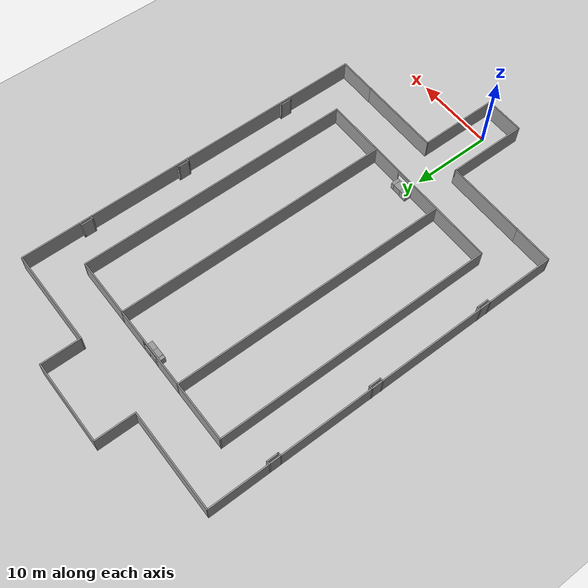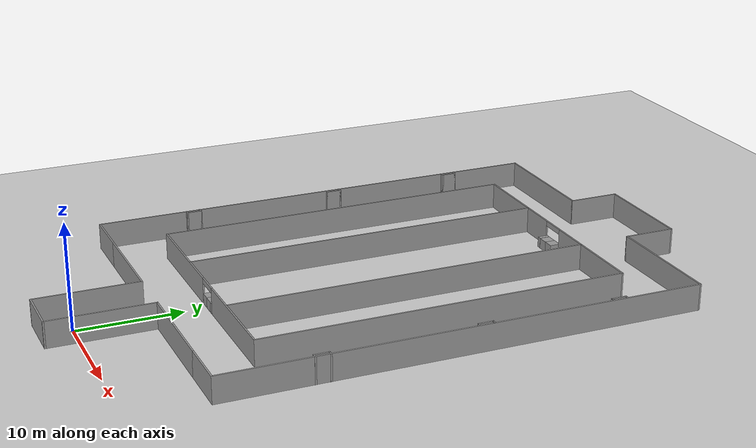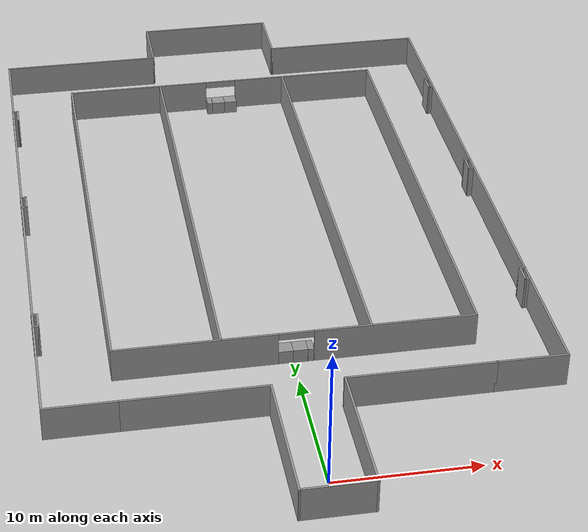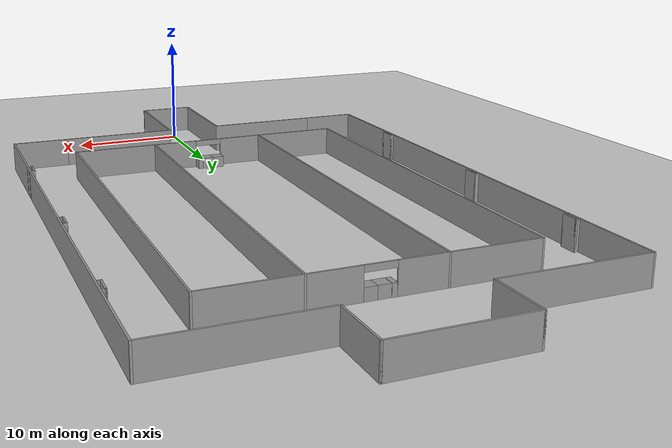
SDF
<sdf version="1.7">
 <world name="default">
  <light name="sun" type="directional">
   <pose>0 0 10 0 -0 0</pose>
   <diffuse>0.8 0.8 0.8 1</diffuse>
   <specular>0.2 0.2 0.2 1</specular>
   <attenuation>
    <range>1000</range>
    <constant>0.9</constant>
    <linear>0.01</linear>
    <quadratic>0.001</quadratic>
   </attenuation>
   <direction>-0.5 0.1 -0.9</direction>
   <spot><inner_angle>0</inner_angle><outer_angle>0</outer_angle><falloff>0</falloff></spot>
  </light>
  <model name="ground_plane">
   <static>1</static>
   <link name="link">
    <collision name="collision">
     <geometry><plane><normal>0 0 1</normal><size>100 100</size></plane></geometry>
     <surface><friction><ode><mu>100</mu><mu2>50</mu2></ode></friction></surface>
    </collision>
    <visual name="visual">
     <cast_shadows>0</cast_shadows>
     <geometry><plane><normal>0 0 1</normal><size>100 100</size></plane></geometry>
     <material>
      <script><uri>file://media/materials/scripts/gazebo.material</uri><name>Gazebo/Grey</name></script>
     </material>
    </visual>
   </link>
  </model>
  <gravity>0 0 -9.8</gravity>
  <magnetic_field>6e-06 2.3e-05 -4.2e-05</magnetic_field>
  <atmosphere type="adiabatic"/>
  <physics type="ode">
   <max_step_size>0.001</max_step_size>
   <real_time_factor>1</real_time_factor>
   <real_time_update_rate>1000</real_time_update_rate>
  </physics>
  <scene><ambient>0.4 0.4 0.4 1</ambient><background>0.7 0.7 0.7 1</background><shadows>1</shadows></scene>
  <spherical_coordinates>
   <surface_model>EARTH_WGS84</surface_model>
   <latitude_deg>0</latitude_deg>
   <longitude_deg>0</longitude_deg>
   <elevation>0</elevation>
   <heading_deg>0</heading_deg>
  </spherical_coordinates>
  <model name="corridor_sowd">
   <pose>0.1169 26.8538 0 0 -0 0</pose>
   <link name="Wall_0">
    <collision name="Wall_0_Collision">
     <geometry><box><size>34.807 0.15 2.5</size></box></geometry>
     <pose>0 0 1.25 0 -0 0</pose>
    </collision>
    <visual name="Wall_0_Visual">
     <pose>0 0 1.25 0 -0 0</pose>
     <geometry><box><size>34.807 0.15 2.5</size></box></geometry>
     <material>
      <script><uri>file://media/materials/scripts/gazebo.material</uri><name>Gazebo/Grey</name></script>
      <ambient>1 1 1 1</ambient>
     </material>
     <meta><layer>0</layer></meta>
    </visual>
    <pose>-12.365 2.59651 0 0 -0 -1.5708</pose>
   </link>
   <link name="Wall_2">
    <pose>0.060001 -14.732 0 0 -0 0</pose>
    <visual name="Wall_2_Visual_0">
     <pose>-6.85314 0 1.25 0 -0 0</pose>
     <geometry><box><size>11.2937 0.15 2.5</size></box></geometry>
     <material>
      <script><uri>file://media/materials/scripts/gazebo.material</uri><name>Gazebo/Grey</name></script>
      <ambient>1 1 1 1</ambient>
     </material>
     <meta><layer>0</layer></meta>
    </visual>
    <collision name="Wall_2_Collision_0">
     <geometry><box><size>11.2937 0.15 2.5</size></box></geometry>
     <pose>-6.85314 0 1.25 0 -0 0</pose>
    </collision>
    <visual name="Wall_2_Visual_1">
     <pose>6.85786 0 1.25 0 -0 0</pose>
     <geometry><box><size>11.2843 0.15 2.5</size></box></geometry>
     <material>
      <script><uri>file://media/materials/scripts/gazebo.material</uri><name>Gazebo/Grey</name></script>
      <ambient>1 1 1 1</ambient>
     </material>
     <meta><layer>0</layer></meta>
    </visual>
    <collision name="Wall_2_Collision_1">
     <geometry><box><size>11.2843 0.15 2.5</size></box></geometry>
     <pose>6.85786 0 1.25 0 -0 0</pose>
    </collision>
    <visual name="Wall_2_Visual_2">
     <pose>0.004721 0 2.25 0 -0 0</pose>
     <geometry><box><size>2.422 0.15 0.5</size></box></geometry>
     <material>
      <script><uri>file://media/materials/scripts/gazebo.material</uri><name>Gazebo/Grey</name></script>
      <ambient>1 1 1 1</ambient>
     </material>
     <meta><layer>0</layer></meta>
    </visual>
    <collision name="Wall_2_Collision_2">
     <geometry><box><size>2.422 0.15 0.5</size></box></geometry>
     <pose>0.004721 0 2.25 0 -0 0</pose>
    </collision>
   </link>
   <link name="Wall_20">
    <collision name="Wall_20_Collision">
     <geometry><box><size>5 0.15 2.5</size></box></geometry>
     <pose>0 0 1.25 0 -0 0</pose>
    </collision>
    <visual name="Wall_20_Visual">
     <pose>0 0 1.25 0 -0 0</pose>
     <geometry><box><size>5 0.15 2.5</size></box></geometry>
     <material>
      <script><uri>file://media/materials/scripts/gazebo.material</uri><name>Gazebo/Grey</name></script>
      <ambient>1 1 1 1</ambient>
     </material>
     <meta><layer>0</layer></meta>
    </visual>
    <pose>-14.85 -19.925 0 0 -0 3.14159</pose>
   </link>
   <link name="Wall_22">
    <collision name="Wall_22_Collision">
     <geometry><box><size>10 0.15 2.5</size></box></geometry>
     <pose>0 0 1.25 0 -0 0</pose>
    </collision>
    <visual name="Wall_22_Visual">
     <pose>0 0 1.25 0 -0 0</pose>
     <geometry><box><size>10 0.15 2.5</size></box></geometry>
     <material>
      <script><uri>file://media/materials/scripts/gazebo.material</uri><name>Gazebo/Grey</name></script>
      <ambient>1 1 1 1</ambient>
     </material>
     <meta><layer>0</layer></meta>
    </visual>
    <pose>-2.549 -24.85 0 0 -0 -1.5708</pose>
   </link>
   <link name="Wall_24">
    <collision name="Wall_24_Collision">
     <geometry><box><size>5 0.15 2.5</size></box></geometry>
     <pose>0 0 1.25 0 -0 0</pose>
    </collision>
    <visual name="Wall_24_Visual">
     <pose>0 0 1.25 0 -0 0</pose>
     <geometry><box><size>5 0.15 2.5</size></box></geometry>
     <material>
      <script><uri>file://media/materials/scripts/gazebo.material</uri><name>Gazebo/Grey</name></script>
      <ambient>1 1 1 1</ambient>
     </material>
     <meta><layer>0</layer></meta>
    </visual>
    <pose>-0.123999 -29.7745 0 0 -0 0.000206</pose>
   </link>
   <link name="Wall_26">
    <collision name="Wall_26_Collision">
     <geometry><box><size>10 0.15 2.5</size></box></geometry>
     <pose>0 0 1.25 0 -0 0</pose>
    </collision>
    <visual name="Wall_26_Visual">
     <pose>0 0 1.25 0 -0 0</pose>
     <geometry><box><size>10 0.15 2.5</size></box></geometry>
     <material>
      <script><uri>file://media/materials/scripts/gazebo.material</uri><name>Gazebo/Grey</name></script>
      <ambient>1 1 1 1</ambient>
     </material>
     <meta><layer>0</layer></meta>
    </visual>
    <pose>2.301 -24.85 0 0 -0 -1.5708</pose>
   </link>
   <link name="Wall_28">
    <collision name="Wall_28_Collision">
     <geometry><box><size>5 0.15 2.5</size></box></geometry>
     <pose>0 0 1.25 0 -0 0</pose>
    </collision>
    <visual name="Wall_28_Visual">
     <pose>0 0 1.25 0 -0 0</pose>
     <geometry><box><size>5 0.15 2.5</size></box></geometry>
     <material>
      <script><uri>file://media/materials/scripts/gazebo.material</uri><name>Gazebo/Grey</name></script>
      <ambient>1 1 1 1</ambient>
     </material>
     <meta><layer>0</layer></meta>
    </visual>
    <pose>14.85 -19.925 0 0 -0 0</pose>
   </link>
   <link name="Wall_4">
    <collision name="Wall_4_Collision">
     <geometry><box><size>34.807 0.15 2.5</size></box></geometry>
     <pose>0 0 1.25 0 -0 0</pose>
    </collision>
    <visual name="Wall_4_Visual">
     <pose>0 0 1.25 0 -0 0</pose>
     <geometry><box><size>34.807 0.15 2.5</size></box></geometry>
     <material>
      <script><uri>file://media/materials/scripts/gazebo.material</uri><name>Gazebo/Grey</name></script>
      <ambient>1 1 1 1</ambient>
     </material>
     <meta><layer>0</layer></meta>
    </visual>
    <pose>12.485 2.59651 0 0 -0 1.5708</pose>
   </link>
   <link name="Wall_42">
    <collision name="Wall_42_Collision">
     <geometry><box><size>10.026 0.15 2.5</size></box></geometry>
     <pose>0 0 1.25 0 -0 0</pose>
    </collision>
    <visual name="Wall_42_Visual">
     <pose>0 0 1.25 0 -0 0</pose>
     <geometry><box><size>10.026 0.15 2.5</size></box></geometry>
     <material>
      <script><uri>file://media/materials/scripts/gazebo.material</uri><name>Gazebo/Grey</name></script>
      <ambient>1 1 1 1</ambient>
     </material>
     <meta><layer>0</layer></meta>
    </visual>
    <pose>-7.487 -19.925 0 0 -0 0</pose>
   </link>
   <link name="Wall_44">
    <collision name="Wall_44_Collision">
     <geometry><box><size>10.274 0.15 2.5</size></box></geometry>
     <pose>0 0 1.25 0 -0 0</pose>
    </collision>
    <visual name="Wall_44_Visual">
     <pose>0 0 1.25 0 -0 0</pose>
     <geometry><box><size>10.274 0.15 2.5</size></box></geometry>
     <material>
      <script><uri>file://media/materials/scripts/gazebo.material</uri><name>Gazebo/Grey</name></script>
      <ambient>1 1 1 1</ambient>
     </material>
     <meta><layer>0</layer></meta>
    </visual>
    <pose>7.363 -19.925 0 0 -0 0</pose>
   </link>
   <link name="Wall_46">
    <collision name="Wall_46_Collision">
     <geometry><box><size>45 0.15 2.5</size></box></geometry>
     <pose>0 0 1.25 0 -0 0</pose>
    </collision>
    <visual name="Wall_46_Visual">
     <pose>0 0 1.25 0 -0 0</pose>
     <geometry><box><size>45 0.15 2.5</size></box></geometry>
     <material>
      <script><uri>file://media/materials/scripts/gazebo.material</uri><name>Gazebo/Grey</name></script>
      <ambient>1 1 1 1</ambient>
     </material>
     <meta><layer>0</layer></meta>
    </visual>
    <pose>-17.275 2.50001 0 0 -0 1.5708</pose>
   </link>
   <link name="Wall_48">
    <collision name="Wall_48_Collision">
     <geometry><box><size>45 0.15 2.5</size></box></geometry>
     <pose>0 0 1.25 0 -0 0</pose>
    </collision>
    <visual name="Wall_48_Visual">
     <pose>0 0 1.25 0 -0 0</pose>
     <geometry><box><size>45 0.15 2.5</size></box></geometry>
     <material>
      <script><uri>file://media/materials/scripts/gazebo.material</uri><name>Gazebo/Grey</name></script>
      <ambient>1 1 1 1</ambient>
     </material>
     <meta><layer>0</layer></meta>
    </visual>
    <pose>17.275 2.50001 0 0 -0 1.5708</pose>
   </link>
   <link name="Wall_57">
    <collision name="Wall_57_Collision">
     <geometry><box><size>34.807 0.15 2.5</size></box></geometry>
     <pose>0 0 1.25 0 -0 0</pose>
    </collision>
    <visual name="Wall_57_Visual">
     <pose>0 0 1.25 0 -0 0</pose>
     <geometry><box><size>34.807 0.15 2.5</size></box></geometry>
     <material>
      <script><uri>file://media/materials/scripts/gazebo.material</uri><name>Gazebo/Grey</name></script>
      <ambient>1 1 1 1</ambient>
     </material>
     <meta><layer>0</layer></meta>
    </visual>
    <pose>-5.058 2.59651 0 0 -0 -1.5708</pose>
   </link>
   <link name="Wall_59">
    <collision name="Wall_59_Collision">
     <geometry><box><size>34.807 0.15 2.5</size></box></geometry>
     <pose>0 0 1.25 0 -0 0</pose>
    </collision>
    <visual name="Wall_59_Visual">
     <pose>0 0 1.25 0 -0 0</pose>
     <geometry><box><size>34.807 0.15 2.5</size></box></geometry>
     <material>
      <script><uri>file://media/materials/scripts/gazebo.material</uri><name>Gazebo/Grey</name></script>
      <ambient>1 1 1 1</ambient>
     </material>
     <meta><layer>0</layer></meta>
    </visual>
    <pose>5.197 2.59651 0 0 -0 1.5708</pose>
   </link>
   <link name="Wall_65">
    <pose>0.060001 19.925 0 0 -0 0</pose>
    <visual name="Wall_65_Visual_0">
     <pose>-6.89511 0 1.25 0 -0 0</pose>
     <geometry><box><size>11.2098 0.15 2.5</size></box></geometry>
     <material>
      <script><uri>file://media/materials/scripts/gazebo.material</uri><name>Gazebo/Grey</name></script>
      <ambient>1 1 1 1</ambient>
     </material>
     <meta><layer>0</layer></meta>
    </visual>
    <collision name="Wall_65_Collision_0">
     <geometry><box><size>11.2098 0.15 2.5</size></box></geometry>
     <pose>-6.89511 0 1.25 0 -0 0</pose>
    </collision>
    <visual name="Wall_65_Visual_1">
     <pose>6.81589 0 1.25 0 -0 0</pose>
     <geometry><box><size>11.3682 0.15 2.5</size></box></geometry>
     <material>
      <script><uri>file://media/materials/scripts/gazebo.material</uri><name>Gazebo/Grey</name></script>
      <ambient>1 1 1 1</ambient>
     </material>
     <meta><layer>0</layer></meta>
    </visual>
    <collision name="Wall_65_Collision_1">
     <geometry><box><size>11.3682 0.15 2.5</size></box></geometry>
     <pose>6.81589 0 1.25 0 -0 0</pose>
    </collision>
    <visual name="Wall_65_Visual_2">
     <pose>-0.079212 0 2.25 0 -0 0</pose>
     <geometry><box><size>2.422 0.15 0.5</size></box></geometry>
     <material>
      <script><uri>file://media/materials/scripts/gazebo.material</uri><name>Gazebo/Grey</name></script>
      <ambient>1 1 1 1</ambient>
     </material>
     <meta><layer>0</layer></meta>
    </visual>
    <collision name="Wall_65_Collision_2">
     <geometry><box><size>2.422 0.15 0.5</size></box></geometry>
     <pose>-0.079212 0 2.25 0 -0 0</pose>
    </collision>
   </link>
   <link name="Wall_68">
    <collision name="Wall_68_Collision">
     <geometry><box><size>12.367 0.15 2.5</size></box></geometry>
     <pose>0 0 1.25 0 -0 0</pose>
    </collision>
    <visual name="Wall_68_Visual">
     <pose>0 0 1.25 0 -0 0</pose>
     <geometry><box><size>12.367 0.15 2.5</size></box></geometry>
     <material>
      <script><uri>file://media/materials/scripts/gazebo.material</uri><name>Gazebo/Grey</name></script>
      <ambient>1 1 1 1</ambient>
     </material>
     <meta><layer>0</layer></meta>
    </visual>
    <pose>-11.1665 24.925 0 0 -0 0</pose>
   </link>
   <link name="Wall_70">
    <collision name="Wall_70_Collision">
     <geometry><box><size>12.228 0.15 2.5</size></box></geometry>
     <pose>0 0 1.25 0 -0 0</pose>
    </collision>
    <visual name="Wall_70_Visual">
     <pose>0 0 1.25 0 -0 0</pose>
     <geometry><box><size>12.228 0.15 2.5</size></box></geometry>
     <material>
      <script><uri>file://media/materials/scripts/gazebo.material</uri><name>Gazebo/Grey</name></script>
      <ambient>1 1 1 1</ambient>
     </material>
     <meta><layer>0</layer></meta>
    </visual>
    <pose>11.236 24.925 0 0 -0 0</pose>
   </link>
   <link name="Wall_72">
    <collision name="Wall_72_Collision">
     <geometry><box><size>5 0.15 2.5</size></box></geometry>
     <pose>0 0 1.25 0 -0 0</pose>
    </collision>
    <visual name="Wall_72_Visual">
     <pose>0 0 1.25 0 -0 0</pose>
     <geometry><box><size>5 0.15 2.5</size></box></geometry>
     <material>
      <script><uri>file://media/materials/scripts/gazebo.material</uri><name>Gazebo/Grey</name></script>
      <ambient>1 1 1 1</ambient>
     </material>
     <meta><layer>0</layer></meta>
    </visual>
    <pose>-5.058 27.35 0 0 -0 1.5708</pose>
   </link>
   <link name="Wall_74">
    <collision name="Wall_74_Collision">
     <geometry><box><size>5 0.15 2.5</size></box></geometry>
     <pose>0 0 1.25 0 -0 0</pose>
    </collision>
    <visual name="Wall_74_Visual">
     <pose>0 0 1.25 0 -0 0</pose>
     <geometry><box><size>5 0.15 2.5</size></box></geometry>
     <material>
      <script><uri>file://media/materials/scripts/gazebo.material</uri><name>Gazebo/Grey</name></script>
      <ambient>1 1 1 1</ambient>
     </material>
     <meta><layer>0</layer></meta>
    </visual>
    <pose>5.197 27.35 0 0 -0 1.5708</pose>
   </link>
   <link name="Wall_76">
    <collision name="Wall_76_Collision">
     <geometry><box><size>10.405 0.15 2.5</size></box></geometry>
     <pose>0 0 1.25 0 -0 0</pose>
    </collision>
    <visual name="Wall_76_Visual">
     <pose>0 0 1.25 0 -0 0</pose>
     <geometry><box><size>10.405 0.15 2.5</size></box></geometry>
     <material>
      <script><uri>file://media/materials/scripts/gazebo.material</uri><name>Gazebo/Grey</name></script>
      <ambient>1 1 1 1</ambient>
     </material>
     <meta><layer>0</layer></meta>
    </visual>
    <pose>0.069501 29.775 0 0 -0 0</pose>
   </link>
   <static>1</static>
  </model>
  <model name="unit_box">
   <pose>-0.527751 12.5515 0.499995 0 1e-05 -0.003143</pose>
   <link name="link">
    <inertial>
     <mass>1</mass>
     <inertia>
      <ixx>0.166667</ixx>
      <ixy>0</ixy>
      <ixz>0</ixz>
      <iyy>0.166667</iyy>
      <iyz>0</iyz>
      <izz>0.166667</izz>
     </inertia>
    </inertial>
    <collision name="collision"><geometry><box><size>1 1 1</size></box></geometry></collision>
    <visual name="visual">
     <geometry><box><size>1 1 1</size></box></geometry>
     <material>
      <script><name>Gazebo/Grey</name><uri>file://media/materials/scripts/gazebo.material</uri></script>
     </material>
    </visual>
   </link>
  </model>
  <model name="unit_box_0">
   <pose>0.474613 12.5447 0.499995 -1e-05 0 -0.007853</pose>
   <link name="link">
    <inertial>
     <mass>1</mass>
     <inertia>
      <ixx>0.166667</ixx>
      <ixy>0</ixy>
      <ixz>0</ixz>
      <iyy>0.166667</iyy>
      <iyz>0</iyz>
      <izz>0.166667</izz>
     </inertia>
    </inertial>
    <collision name="collision"><geometry><box><size>1 1 1</size></box></geometry></collision>
    <visual name="visual">
     <geometry><box><size>1 1 1</size></box></geometry>
     <material>
      <script><name>Gazebo/Grey</name><uri>file://media/materials/scripts/gazebo.material</uri></script>
     </material>
    </visual>
   </link>
  </model>
  <model name="unit_box_1">
   <pose>1.18264 12.5435 0.499999 2e-06 -0 -0.007827</pose>
   <link name="link">
    <inertial>
     <mass>1</mass>
     <inertia>
      <ixx>0.166667</ixx>
      <ixy>0</ixy>
      <ixz>0</ixz>
      <iyy>0.166667</iyy>
      <iyz>0</iyz>
      <izz>0.166667</izz>
     </inertia>
    </inertial>
    <collision name="collision"><geometry><box><size>0.405337 1 1</size></box></geometry></collision>
    <visual name="visual">
     <geometry><box><size>0.405337 1 1</size></box></geometry>
     <material>
      <script><name>Gazebo/Grey</name><uri>file://media/materials/scripts/gazebo.material</uri></script>
     </material>
    </visual>
   </link>
  </model>
  <model name="unit_box_1_clone">
   <pose>-0.907788 46.3477 0.499996 7e-06 -0 -0.007827</pose>
   <link name="link">
    <inertial>
     <mass>1</mass>
     <inertia>
      <ixx>0.166667</ixx>
      <ixy>0</ixy>
      <ixz>0</ixz>
      <iyy>0.166667</iyy>
      <iyz>0</iyz>
      <izz>0.166667</izz>
     </inertia>
    </inertial>
    <collision name="collision"><geometry><box><size>0.405338 1 1</size></box></geometry></collision>
    <visual name="visual">
     <geometry><box><size>0.405338 1 1</size></box></geometry>
     <material>
      <script><name>Gazebo/Grey</name><uri>file://media/materials/scripts/gazebo.material</uri></script>
     </material>
    </visual>
   </link>
  </model>
  <model name="unit_box_2">
   <pose>0.811059 46.3508 0.499996 0 -9e-06 0.006631</pose>
   <link name="link">
    <inertial>
     <mass>1</mass>
     <inertia>
      <ixx>0.166667</ixx>
      <ixy>0</ixy>
      <ixz>0</ixz>
      <iyy>0.166667</iyy>
      <iyz>0</iyz>
      <izz>0.166667</izz>
     </inertia>
    </inertial>
    <collision name="collision"><geometry><box><size>1 1 1</size></box></geometry></collision>
    <visual name="visual">
     <geometry><box><size>1 1 1</size></box></geometry>
     <material>
      <script><name>Gazebo/Grey</name><uri>file://media/materials/scripts/gazebo.material</uri></script>
     </material>
    </visual>
   </link>
  </model>
  <model name="unit_box_3">
   <pose>-0.188919 46.3418 0.499995 0 1e-05 0.006659</pose>
   <link name="link">
    <inertial>
     <mass>1</mass>
     <inertia>
      <ixx>0.166667</ixx>
      <ixy>0</ixy>
      <ixz>0</ixz>
      <iyy>0.166667</iyy>
      <iyz>0</iyz>
      <izz>0.166667</izz>
     </inertia>
    </inertial>
    <collision name="collision"><geometry><box><size>1 1 1</size></box></geometry></collision>
    <visual name="visual">
     <geometry><box><size>1 1 1</size></box></geometry>
     <material>
      <script><name>Gazebo/Grey</name><uri>file://media/materials/scripts/gazebo.material</uri></script>
     </material>
    </visual>
   </link>
  </model>
  <model name="viga_1m5">
   <pose>18.6711 15.647 0 0 0 -1.57368</pose>
   <link name="Wall_0">
    <collision name="Wall_0_Collision">
     <geometry><box><size>1.5 0.15 2.5</size></box></geometry>
     <pose>0 0 1.25 0 -0 0</pose>
    </collision>
    <visual name="Wall_0_Visual">
     <pose>0 0 1.25 0 -0 0</pose>
     <geometry><box><size>1.5 0.15 2.5</size></box></geometry>
     <material>
      <script><uri>file://media/materials/scripts/gazebo.material</uri><name>Gazebo/Grey</name></script>
      <ambient>1 1 1 1</ambient>
     </material>
     <meta><layer>0</layer></meta>
    </visual>
    <pose>-0.583658 -1.6183 0 0 -0 0</pose>
   </link>
   <link name="Wall_2">
    <collision name="Wall_2_Collision">
     <geometry><box><size>0.5 0.15 2.5</size></box></geometry>
     <pose>0 0 1.25 0 -0 0</pose>
    </collision>
    <visual name="Wall_2_Visual">
     <pose>0 0 1.25 0 -0 0</pose>
     <geometry><box><size>0.5 0.15 2.5</size></box></geometry>
     <material>
      <script><uri>file://media/materials/scripts/gazebo.material</uri><name>Gazebo/Grey</name></script>
      <ambient>1 1 1 1</ambient>
     </material>
     <meta><layer>0</layer></meta>
    </visual>
    <pose>0.091342 -1.4433 0 0 -0 1.5708</pose>
   </link>
   <link name="Wall_4">
    <collision name="Wall_4_Collision">
     <geometry><box><size>0.5 0.15 2.5</size></box></geometry>
     <pose>0 0 1.25 0 -0 0</pose>
    </collision>
    <visual name="Wall_4_Visual">
     <pose>0 0 1.25 0 -0 0</pose>
     <geometry><box><size>0.5 0.15 2.5</size></box></geometry>
     <material>
      <script><uri>file://media/materials/scripts/gazebo.material</uri><name>Gazebo/Grey</name></script>
      <ambient>1 1 1 1</ambient>
     </material>
     <meta><layer>0</layer></meta>
    </visual>
    <pose>-1.25866 -1.4433 0 0 -0 1.5708</pose>
   </link>
   <static>1</static>
  </model>
  <model name="viga_1m5_0">
   <pose>18.6392 30.3428 0 0 0 -1.56895</pose>
   <link name="Wall_0">
    <collision name="Wall_0_Collision">
     <geometry><box><size>1.5 0.15 2.5</size></box></geometry>
     <pose>0 0 1.25 0 -0 0</pose>
    </collision>
    <visual name="Wall_0_Visual">
     <pose>0 0 1.25 0 -0 0</pose>
     <geometry><box><size>1.5 0.15 2.5</size></box></geometry>
     <material>
      <script><uri>file://media/materials/scripts/gazebo.material</uri><name>Gazebo/Grey</name></script>
      <ambient>1 1 1 1</ambient>
     </material>
     <meta><layer>0</layer></meta>
    </visual>
    <pose>-0.583658 -1.6183 0 0 -0 0</pose>
   </link>
   <link name="Wall_2">
    <collision name="Wall_2_Collision">
     <geometry><box><size>0.5 0.15 2.5</size></box></geometry>
     <pose>0 0 1.25 0 -0 0</pose>
    </collision>
    <visual name="Wall_2_Visual">
     <pose>0 0 1.25 0 -0 0</pose>
     <geometry><box><size>0.5 0.15 2.5</size></box></geometry>
     <material>
      <script><uri>file://media/materials/scripts/gazebo.material</uri><name>Gazebo/Grey</name></script>
      <ambient>1 1 1 1</ambient>
     </material>
     <meta><layer>0</layer></meta>
    </visual>
    <pose>0.091342 -1.4433 0 0 -0 1.5708</pose>
   </link>
   <link name="Wall_4">
    <collision name="Wall_4_Collision">
     <geometry><box><size>0.5 0.15 2.5</size></box></geometry>
     <pose>0 0 1.25 0 -0 0</pose>
    </collision>
    <visual name="Wall_4_Visual">
     <pose>0 0 1.25 0 -0 0</pose>
     <geometry><box><size>0.5 0.15 2.5</size></box></geometry>
     <material>
      <script><uri>file://media/materials/scripts/gazebo.material</uri><name>Gazebo/Grey</name></script>
      <ambient>1 1 1 1</ambient>
     </material>
     <meta><layer>0</layer></meta>
    </visual>
    <pose>-1.25866 -1.4433 0 0 -0 1.5708</pose>
   </link>
   <static>1</static>
  </model>
  <model name="viga_1m5_1">
   <pose>18.6493 43.1509 0 0 0 -1.57463</pose>
   <link name="Wall_0">
    <collision name="Wall_0_Collision">
     <geometry><box><size>1.5 0.15 2.5</size></box></geometry>
     <pose>0 0 1.25 0 -0 0</pose>
    </collision>
    <visual name="Wall_0_Visual">
     <pose>0 0 1.25 0 -0 0</pose>
     <geometry><box><size>1.5 0.15 2.5</size></box></geometry>
     <material>
      <script><uri>file://media/materials/scripts/gazebo.material</uri><name>Gazebo/Grey</name></script>
      <ambient>1 1 1 1</ambient>
     </material>
     <meta><layer>0</layer></meta>
    </visual>
    <pose>-0.583658 -1.6183 0 0 -0 0</pose>
   </link>
   <link name="Wall_2">
    <collision name="Wall_2_Collision">
     <geometry><box><size>0.5 0.15 2.5</size></box></geometry>
     <pose>0 0 1.25 0 -0 0</pose>
    </collision>
    <visual name="Wall_2_Visual">
     <pose>0 0 1.25 0 -0 0</pose>
     <geometry><box><size>0.5 0.15 2.5</size></box></geometry>
     <material>
      <script><uri>file://media/materials/scripts/gazebo.material</uri><name>Gazebo/Grey</name></script>
      <ambient>1 1 1 1</ambient>
     </material>
     <meta><layer>0</layer></meta>
    </visual>
    <pose>0.091342 -1.4433 0 0 -0 1.5708</pose>
   </link>
   <link name="Wall_4">
    <collision name="Wall_4_Collision">
     <geometry><box><size>0.5 0.15 2.5</size></box></geometry>
     <pose>0 0 1.25 0 -0 0</pose>
    </collision>
    <visual name="Wall_4_Visual">
     <pose>0 0 1.25 0 -0 0</pose>
     <geometry><box><size>0.5 0.15 2.5</size></box></geometry>
     <material>
      <script><uri>file://media/materials/scripts/gazebo.material</uri><name>Gazebo/Grey</name></script>
      <ambient>1 1 1 1</ambient>
     </material>
     <meta><layer>0</layer></meta>
    </visual>
    <pose>-1.25866 -1.4433 0 0 -0 1.5708</pose>
   </link>
   <static>1</static>
  </model>
  <model name="viga_1m5_2">
   <pose>-18.448 16.8179 0 0 -0 1.57391</pose>
   <link name="Wall_0">
    <collision name="Wall_0_Collision">
     <geometry><box><size>1.5 0.15 2.5</size></box></geometry>
     <pose>0 0 1.25 0 -0 0</pose>
    </collision>
    <visual name="Wall_0_Visual">
     <pose>0 0 1.25 0 -0 0</pose>
     <geometry><box><size>1.5 0.15 2.5</size></box></geometry>
     <material>
      <script><uri>file://media/materials/scripts/gazebo.material</uri><name>Gazebo/Grey</name></script>
      <ambient>1 1 1 1</ambient>
     </material>
     <meta><layer>0</layer></meta>
    </visual>
    <pose>-0.583658 -1.6183 0 0 -0 0</pose>
   </link>
   <link name="Wall_2">
    <collision name="Wall_2_Collision">
     <geometry><box><size>0.5 0.15 2.5</size></box></geometry>
     <pose>0 0 1.25 0 -0 0</pose>
    </collision>
    <visual name="Wall_2_Visual">
     <pose>0 0 1.25 0 -0 0</pose>
     <geometry><box><size>0.5 0.15 2.5</size></box></geometry>
     <material>
      <script><uri>file://media/materials/scripts/gazebo.material</uri><name>Gazebo/Grey</name></script>
      <ambient>1 1 1 1</ambient>
     </material>
     <meta><layer>0</layer></meta>
    </visual>
    <pose>0.091342 -1.4433 0 0 -0 1.5708</pose>
   </link>
   <link name="Wall_4">
    <collision name="Wall_4_Collision">
     <geometry><box><size>0.5 0.15 2.5</size></box></geometry>
     <pose>0 0 1.25 0 -0 0</pose>
    </collision>
    <visual name="Wall_4_Visual">
     <pose>0 0 1.25 0 -0 0</pose>
     <geometry><box><size>0.5 0.15 2.5</size></box></geometry>
     <material>
      <script><uri>file://media/materials/scripts/gazebo.material</uri><name>Gazebo/Grey</name></script>
      <ambient>1 1 1 1</ambient>
     </material>
     <meta><layer>0</layer></meta>
    </visual>
    <pose>-1.25866 -1.4433 0 0 -0 1.5708</pose>
   </link>
   <static>1</static>
  </model>
  <model name="viga_1m5_3">
   <pose>-18.4472 31.5327 0 0 -0 1.57021</pose>
   <link name="Wall_0">
    <collision name="Wall_0_Collision">
     <geometry><box><size>1.5 0.15 2.5</size></box></geometry>
     <pose>0 0 1.25 0 -0 0</pose>
    </collision>
    <visual name="Wall_0_Visual">
     <pose>0 0 1.25 0 -0 0</pose>
     <geometry><box><size>1.5 0.15 2.5</size></box></geometry>
     <material>
      <script><uri>file://media/materials/scripts/gazebo.material</uri><name>Gazebo/Grey</name></script>
      <ambient>1 1 1 1</ambient>
     </material>
     <meta><layer>0</layer></meta>
    </visual>
    <pose>-0.583658 -1.6183 0 0 -0 0</pose>
   </link>
   <link name="Wall_2">
    <collision name="Wall_2_Collision">
     <geometry><box><size>0.5 0.15 2.5</size></box></geometry>
     <pose>0 0 1.25 0 -0 0</pose>
    </collision>
    <visual name="Wall_2_Visual">
     <pose>0 0 1.25 0 -0 0</pose>
     <geometry><box><size>0.5 0.15 2.5</size></box></geometry>
     <material>
      <script><uri>file://media/materials/scripts/gazebo.material</uri><name>Gazebo/Grey</name></script>
      <ambient>1 1 1 1</ambient>
     </material>
     <meta><layer>0</layer></meta>
    </visual>
    <pose>0.091342 -1.4433 0 0 -0 1.5708</pose>
   </link>
   <link name="Wall_4">
    <collision name="Wall_4_Collision">
     <geometry><box><size>0.5 0.15 2.5</size></box></geometry>
     <pose>0 0 1.25 0 -0 0</pose>
    </collision>
    <visual name="Wall_4_Visual">
     <pose>0 0 1.25 0 -0 0</pose>
     <geometry><box><size>0.5 0.15 2.5</size></box></geometry>
     <material>
      <script><uri>file://media/materials/scripts/gazebo.material</uri><name>Gazebo/Grey</name></script>
      <ambient>1 1 1 1</ambient>
     </material>
     <meta><layer>0</layer></meta>
    </visual>
    <pose>-1.25866 -1.4433 0 0 -0 1.5708</pose>
   </link>
   <static>1</static>
  </model>
  <model name="viga_1m5_4">
   <pose>-18.4325 44.3808 0 0 -0 1.57319</pose>
   <link name="Wall_0">
    <collision name="Wall_0_Collision">
     <geometry><box><size>1.5 0.15 2.5</size></box></geometry>
     <pose>0 0 1.25 0 -0 0</pose>
    </collision>
    <visual name="Wall_0_Visual">
     <pose>0 0 1.25 0 -0 0</pose>
     <geometry><box><size>1.5 0.15 2.5</size></box></geometry>
     <material>
      <script><uri>file://media/materials/scripts/gazebo.material</uri><name>Gazebo/Grey</name></script>
      <ambient>1 1 1 1</ambient>
     </material>
     <meta><layer>0</layer></meta>
    </visual>
    <pose>-0.583658 -1.6183 0 0 -0 0</pose>
   </link>
   <link name="Wall_2">
    <collision name="Wall_2_Collision">
     <geometry><box><size>0.5 0.15 2.5</size></box></geometry>
     <pose>0 0 1.25 0 -0 0</pose>
    </collision>
    <visual name="Wall_2_Visual">
     <pose>0 0 1.25 0 -0 0</pose>
     <geometry><box><size>0.5 0.15 2.5</size></box></geometry>
     <material>
      <script><uri>file://media/materials/scripts/gazebo.material</uri><name>Gazebo/Grey</name></script>
      <ambient>1 1 1 1</ambient>
     </material>
     <meta><layer>0</layer></meta>
    </visual>
    <pose>0.091342 -1.4433 0 0 -0 1.5708</pose>
   </link>
   <link name="Wall_4">
    <collision name="Wall_4_Collision">
     <geometry><box><size>0.5 0.15 2.5</size></box></geometry>
     <pose>0 0 1.25 0 -0 0</pose>
    </collision>
    <visual name="Wall_4_Visual">
     <pose>0 0 1.25 0 -0 0</pose>
     <geometry><box><size>0.5 0.15 2.5</size></box></geometry>
     <material>
      <script><uri>file://media/materials/scripts/gazebo.material</uri><name>Gazebo/Grey</name></script>
      <ambient>1 1 1 1</ambient>
     </material>
     <meta><layer>0</layer></meta>
    </visual>
    <pose>-1.25866 -1.4433 0 0 -0 1.5708</pose>
   </link>
   <static>1</static>
  </model>
 </world>
</sdf>
